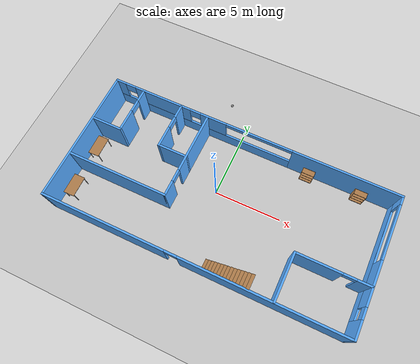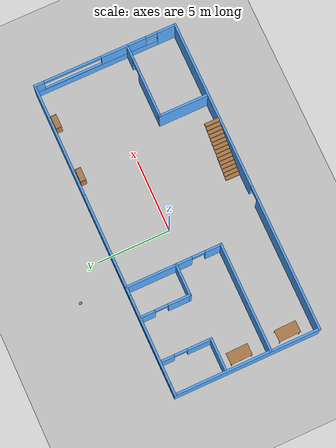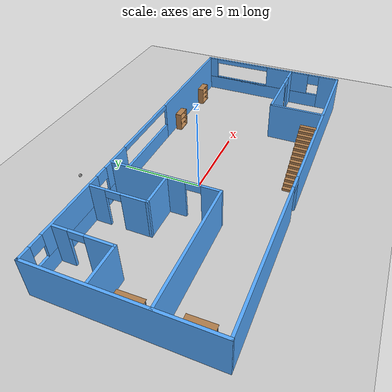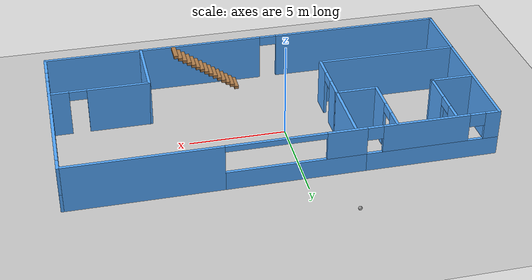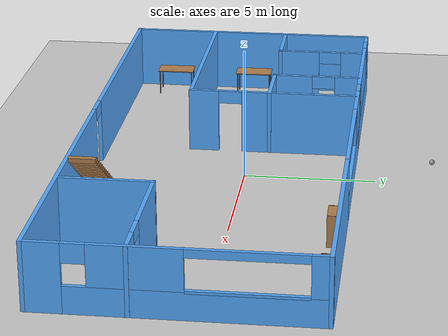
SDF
<sdf version="1.6">
 <world name="default">
  <plugin name="welcome" filename="libwelcome.so"/>
  <light name="sun" type="directional">
   <pose>0 0 10 0 -0 0</pose>
   <diffuse>0.8 0.8 0.8 1</diffuse>
   <specular>0.2 0.2 0.2 1</specular>
   <attenuation>
    <range>1000</range>
    <constant>0.9</constant>
    <linear>0.01</linear>
    <quadratic>0.001</quadratic>
   </attenuation>
   <direction>-0.5 0.1 -0.9</direction>
  </light>
  <model name="ground_plane">
   <static>1</static>
   <link name="link">
    <collision name="collision">
     <geometry><plane><normal>0 0 1</normal><size>100 100</size></plane></geometry>
     <surface><friction><ode><mu>100</mu><mu2>50</mu2></ode></friction></surface>
    </collision>
    <visual name="visual">
     <cast_shadows>0</cast_shadows>
     <geometry><plane><normal>0 0 1</normal><size>100 100</size></plane></geometry>
     <material>
      <script><uri>file://media/materials/scripts/gazebo.material</uri><name>Gazebo/Grey</name></script>
     </material>
    </visual>
   </link>
  </model>
  <gravity>0 0 -9.8</gravity>
  <magnetic_field>6e-06 2.3e-05 -4.2e-05</magnetic_field>
  <atmosphere type="adiabatic"/>
  <physics name="default_physics" default="0" type="ode">
   <max_step_size>0.001</max_step_size>
   <real_time_factor>1</real_time_factor>
   <real_time_update_rate>1000</real_time_update_rate>
  </physics>
  <scene><ambient>0.4 0.4 0.4 1</ambient><background>0.7 0.7 0.7 1</background><shadows>1</shadows></scene>
  <spherical_coordinates>
   <surface_model>EARTH_WGS84</surface_model>
   <latitude_deg>0</latitude_deg>
   <longitude_deg>0</longitude_deg>
   <elevation>0</elevation>
   <heading_deg>0</heading_deg>
  </spherical_coordinates>
  <model name="Building">
   <pose>0.929117 -0.808355 0 0 -0 0</pose>
   <link name="Stairs_0">
    <visual name="Stairs_0_Visual_0">
     <pose>0.664392 -4.38115 0.083333 0 -0 1.5708</pose>
     <geometry><box><size>1 0.233333 0.166667</size></box></geometry>
     <material>
      <script><uri>file://media/materials/scripts/gazebo.material</uri><name>Gazebo/Wood</name></script>
      <ambient>1 1 1 1</ambient>
     </material>
     <meta><layer>0</layer></meta>
    </visual>
    <collision name="Stairs_0_Collision_0">
     <geometry><box><size>1 0.233333 0.166667</size></box></geometry>
     <pose>0.664392 -4.38115 0.083333 0 -0 1.5708</pose>
    </collision>
    <visual name="Stairs_0_Visual_1">
     <pose>0.897726 -4.38115 0.25 0 -0 1.5708</pose>
     <geometry><box><size>1 0.233333 0.166667</size></box></geometry>
     <material>
      <script><uri>file://media/materials/scripts/gazebo.material</uri><name>Gazebo/Wood</name></script>
      <ambient>1 1 1 1</ambient>
     </material>
     <meta><layer>0</layer></meta>
    </visual>
    <collision name="Stairs_0_Collision_1">
     <geometry><box><size>1 0.233333 0.166667</size></box></geometry>
     <pose>0.897726 -4.38115 0.25 0 -0 1.5708</pose>
    </collision>
    <visual name="Stairs_0_Visual_2">
     <pose>1.13106 -4.38115 0.416667 0 -0 1.5708</pose>
     <geometry><box><size>1 0.233333 0.166667</size></box></geometry>
     <material>
      <script><uri>file://media/materials/scripts/gazebo.material</uri><name>Gazebo/Wood</name></script>
      <ambient>1 1 1 1</ambient>
     </material>
     <meta><layer>0</layer></meta>
    </visual>
    <collision name="Stairs_0_Collision_2">
     <geometry><box><size>1 0.233333 0.166667</size></box></geometry>
     <pose>1.13106 -4.38115 0.416667 0 -0 1.5708</pose>
    </collision>
    <visual name="Stairs_0_Visual_3">
     <pose>1.36439 -4.38115 0.583333 0 -0 1.5708</pose>
     <geometry><box><size>1 0.233333 0.166667</size></box></geometry>
     <material>
      <script><uri>file://media/materials/scripts/gazebo.material</uri><name>Gazebo/Wood</name></script>
      <ambient>1 1 1 1</ambient>
     </material>
     <meta><layer>0</layer></meta>
    </visual>
    <collision name="Stairs_0_Collision_3">
     <geometry><box><size>1 0.233333 0.166667</size></box></geometry>
     <pose>1.36439 -4.38115 0.583333 0 -0 1.5708</pose>
    </collision>
    <visual name="Stairs_0_Visual_4">
     <pose>1.59773 -4.38115 0.75 0 -0 1.5708</pose>
     <geometry><box><size>1 0.233333 0.166667</size></box></geometry>
     <material>
      <script><uri>file://media/materials/scripts/gazebo.material</uri><name>Gazebo/Wood</name></script>
      <ambient>1 1 1 1</ambient>
     </material>
     <meta><layer>0</layer></meta>
    </visual>
    <collision name="Stairs_0_Collision_4">
     <geometry><box><size>1 0.233333 0.166667</size></box></geometry>
     <pose>1.59773 -4.38115 0.75 0 -0 1.5708</pose>
    </collision>
    <visual name="Stairs_0_Visual_5">
     <pose>1.83106 -4.38115 0.916667 0 -0 1.5708</pose>
     <geometry><box><size>1 0.233333 0.166667</size></box></geometry>
     <material>
      <script><uri>file://media/materials/scripts/gazebo.material</uri><name>Gazebo/Wood</name></script>
      <ambient>1 1 1 1</ambient>
     </material>
     <meta><layer>0</layer></meta>
    </visual>
    <collision name="Stairs_0_Collision_5">
     <geometry><box><size>1 0.233333 0.166667</size></box></geometry>
     <pose>1.83106 -4.38115 0.916667 0 -0 1.5708</pose>
    </collision>
    <visual name="Stairs_0_Visual_6">
     <pose>2.06439 -4.38115 1.08333 0 -0 1.5708</pose>
     <geometry><box><size>1 0.233333 0.166667</size></box></geometry>
     <material>
      <script><uri>file://media/materials/scripts/gazebo.material</uri><name>Gazebo/Wood</name></script>
      <ambient>1 1 1 1</ambient>
     </material>
     <meta><layer>0</layer></meta>
    </visual>
    <collision name="Stairs_0_Collision_6">
     <geometry><box><size>1 0.233333 0.166667</size></box></geometry>
     <pose>2.06439 -4.38115 1.08333 0 -0 1.5708</pose>
    </collision>
    <visual name="Stairs_0_Visual_7">
     <pose>2.29773 -4.38115 1.25 0 -0 1.5708</pose>
     <geometry><box><size>1 0.233333 0.166667</size></box></geometry>
     <material>
      <script><uri>file://media/materials/scripts/gazebo.material</uri><name>Gazebo/Wood</name></script>
      <ambient>1 1 1 1</ambient>
     </material>
     <meta><layer>0</layer></meta>
    </visual>
    <collision name="Stairs_0_Collision_7">
     <geometry><box><size>1 0.233333 0.166667</size></box></geometry>
     <pose>2.29773 -4.38115 1.25 0 -0 1.5708</pose>
    </collision>
    <visual name="Stairs_0_Visual_8">
     <pose>2.53106 -4.38115 1.41667 0 -0 1.5708</pose>
     <geometry><box><size>1 0.233333 0.166667</size></box></geometry>
     <material>
      <script><uri>file://media/materials/scripts/gazebo.material</uri><name>Gazebo/Wood</name></script>
      <ambient>1 1 1 1</ambient>
     </material>
     <meta><layer>0</layer></meta>
    </visual>
    <collision name="Stairs_0_Collision_8">
     <geometry><box><size>1 0.233333 0.166667</size></box></geometry>
     <pose>2.53106 -4.38115 1.41667 0 -0 1.5708</pose>
    </collision>
    <visual name="Stairs_0_Visual_9">
     <pose>2.76439 -4.38115 1.58333 0 -0 1.5708</pose>
     <geometry><box><size>1 0.233333 0.166667</size></box></geometry>
     <material>
      <script><uri>file://media/materials/scripts/gazebo.material</uri><name>Gazebo/Wood</name></script>
      <ambient>1 1 1 1</ambient>
     </material>
     <meta><layer>0</layer></meta>
    </visual>
    <collision name="Stairs_0_Collision_9">
     <geometry><box><size>1 0.233333 0.166667</size></box></geometry>
     <pose>2.76439 -4.38115 1.58333 0 -0 1.5708</pose>
    </collision>
    <visual name="Stairs_0_Visual_10">
     <pose>2.99773 -4.38115 1.75 0 -0 1.5708</pose>
     <geometry><box><size>1 0.233333 0.166667</size></box></geometry>
     <material>
      <script><uri>file://media/materials/scripts/gazebo.material</uri><name>Gazebo/Wood</name></script>
      <ambient>1 1 1 1</ambient>
     </material>
     <meta><layer>0</layer></meta>
    </visual>
    <collision name="Stairs_0_Collision_10">
     <geometry><box><size>1 0.233333 0.166667</size></box></geometry>
     <pose>2.99773 -4.38115 1.75 0 -0 1.5708</pose>
    </collision>
    <visual name="Stairs_0_Visual_11">
     <pose>3.23106 -4.38115 1.91667 0 -0 1.5708</pose>
     <geometry><box><size>1 0.233333 0.166667</size></box></geometry>
     <material>
      <script><uri>file://media/materials/scripts/gazebo.material</uri><name>Gazebo/Wood</name></script>
      <ambient>1 1 1 1</ambient>
     </material>
     <meta><layer>0</layer></meta>
    </visual>
    <collision name="Stairs_0_Collision_11">
     <geometry><box><size>1 0.233333 0.166667</size></box></geometry>
     <pose>3.23106 -4.38115 1.91667 0 -0 1.5708</pose>
    </collision>
    <visual name="Stairs_0_Visual_12">
     <pose>3.46439 -4.38115 2.08333 0 -0 1.5708</pose>
     <geometry><box><size>1 0.233333 0.166667</size></box></geometry>
     <material>
      <script><uri>file://media/materials/scripts/gazebo.material</uri><name>Gazebo/Wood</name></script>
      <ambient>1 1 1 1</ambient>
     </material>
     <meta><layer>0</layer></meta>
    </visual>
    <collision name="Stairs_0_Collision_12">
     <geometry><box><size>1 0.233333 0.166667</size></box></geometry>
     <pose>3.46439 -4.38115 2.08333 0 -0 1.5708</pose>
    </collision>
    <visual name="Stairs_0_Visual_13">
     <pose>3.69773 -4.38115 2.25 0 -0 1.5708</pose>
     <geometry><box><size>1 0.233333 0.166667</size></box></geometry>
     <material>
      <script><uri>file://media/materials/scripts/gazebo.material</uri><name>Gazebo/Wood</name></script>
      <ambient>1 1 1 1</ambient>
     </material>
     <meta><layer>0</layer></meta>
    </visual>
    <collision name="Stairs_0_Collision_13">
     <geometry><box><size>1 0.233333 0.166667</size></box></geometry>
     <pose>3.69773 -4.38115 2.25 0 -0 1.5708</pose>
    </collision>
    <visual name="Stairs_0_Visual_14">
     <pose>3.93106 -4.38115 2.41667 0 -0 1.5708</pose>
     <geometry><box><size>1 0.233333 0.166667</size></box></geometry>
     <material>
      <script><uri>file://media/materials/scripts/gazebo.material</uri><name>Gazebo/Wood</name></script>
      <ambient>1 1 1 1</ambient>
     </material>
     <meta><layer>0</layer></meta>
    </visual>
    <collision name="Stairs_0_Collision_14">
     <geometry><box><size>1 0.233333 0.166667</size></box></geometry>
     <pose>3.93106 -4.38115 2.41667 0 -0 1.5708</pose>
    </collision>
   </link>
   <link name="Wall_10">
    <pose>-3.45255 1.62717 0 0 -0 1.5708</pose>
    <visual name="Wall_10_Visual_0">
     <pose>-2.71124 0 1.25 0 -0 0</pose>
     <geometry><box><size>1.17752 0.15 2.5</size></box></geometry>
     <material>
      <script><uri>file://media/materials/scripts/gazebo.material</uri><name>Gazebo/Grey</name></script>
      <ambient>0.333333 0.666667 1 1</ambient>
     </material>
     <meta><layer>0</layer></meta>
    </visual>
    <collision name="Wall_10_Collision_0">
     <geometry><box><size>1.17752 0.15 2.5</size></box></geometry>
     <pose>-2.71124 0 1.25 0 -0 0</pose>
    </collision>
    <visual name="Wall_10_Visual_1">
     <pose>1.03876 0 1.25 0 -0 0</pose>
     <geometry><box><size>4.52248 0.15 2.5</size></box></geometry>
     <material>
      <script><uri>file://media/materials/scripts/gazebo.material</uri><name>Gazebo/Grey</name></script>
      <ambient>0.333333 0.666667 1 1</ambient>
     </material>
     <meta><layer>0</layer></meta>
    </visual>
    <collision name="Wall_10_Collision_1">
     <geometry><box><size>4.52248 0.15 2.5</size></box></geometry>
     <pose>1.03876 0 1.25 0 -0 0</pose>
    </collision>
    <visual name="Wall_10_Visual_2">
     <pose>-1.67248 0 2.25 0 -0 0</pose>
     <geometry><box><size>0.9 0.15 0.5</size></box></geometry>
     <material>
      <script><uri>file://media/materials/scripts/gazebo.material</uri><name>Gazebo/Grey</name></script>
      <ambient>0.333333 0.666667 1 1</ambient>
     </material>
     <meta><layer>0</layer></meta>
    </visual>
    <collision name="Wall_10_Collision_2">
     <geometry><box><size>0.9 0.15 0.5</size></box></geometry>
     <pose>-1.67248 0 2.25 0 -0 0</pose>
    </collision>
   </link>
   <link name="Wall_12">
    <pose>-8.58176 3.12092 0 0 0 -1.5708</pose>
    <visual name="Wall_12_Visual_0">
     <pose>-1.2991 0 1.25 0 -0 0</pose>
     <geometry><box><size>0.90181 0.15 2.5</size></box></geometry>
     <material>
      <script><uri>file://media/materials/scripts/gazebo.material</uri><name>Gazebo/Grey</name></script>
      <ambient>0.333333 0.666667 1 1</ambient>
     </material>
     <meta><layer>0</layer></meta>
    </visual>
    <collision name="Wall_12_Collision_0">
     <geometry><box><size>0.90181 0.15 2.5</size></box></geometry>
     <pose>-1.2991 0 1.25 0 -0 0</pose>
    </collision>
    <visual name="Wall_12_Visual_1">
     <pose>0.900905 0 1.25 0 -0 0</pose>
     <geometry><box><size>1.69819 0.15 2.5</size></box></geometry>
     <material>
      <script><uri>file://media/materials/scripts/gazebo.material</uri><name>Gazebo/Grey</name></script>
      <ambient>0.333333 0.666667 1 1</ambient>
     </material>
     <meta><layer>0</layer></meta>
    </visual>
    <collision name="Wall_12_Collision_1">
     <geometry><box><size>1.69819 0.15 2.5</size></box></geometry>
     <pose>0.900905 0 1.25 0 -0 0</pose>
    </collision>
    <visual name="Wall_12_Visual_2">
     <pose>-0.39819 0 2.25 0 -0 0</pose>
     <geometry><box><size>0.9 0.15 0.5</size></box></geometry>
     <material>
      <script><uri>file://media/materials/scripts/gazebo.material</uri><name>Gazebo/Grey</name></script>
      <ambient>0.333333 0.666667 1 1</ambient>
     </material>
     <meta><layer>0</layer></meta>
    </visual>
    <collision name="Wall_12_Collision_2">
     <geometry><box><size>0.9 0.15 0.5</size></box></geometry>
     <pose>-0.39819 0 2.25 0 -0 0</pose>
    </collision>
   </link>
   <link name="Wall_13">
    <collision name="Wall_13_Collision">
     <geometry><box><size>2.25 0.15 2.5</size></box></geometry>
     <pose>0 0 1.25 0 -0 0</pose>
    </collision>
    <visual name="Wall_13_Visual">
     <pose>0 0 1.25 0 -0 0</pose>
     <geometry><box><size>2.25 0.15 2.5</size></box></geometry>
     <material>
      <script><uri>file://media/materials/scripts/gazebo.material</uri><name>Gazebo/Grey</name></script>
      <ambient>0.333333 0.666667 1 1</ambient>
     </material>
     <meta><layer>0</layer></meta>
    </visual>
    <pose>-9.63176 1.44592 0 0 -0 3.14159</pose>
   </link>
   <link name="Wall_19">
    <collision name="Wall_19_Collision">
     <geometry><box><size>2.25 0.15 2.5</size></box></geometry>
     <pose>0 0 1.25 0 -0 0</pose>
    </collision>
    <visual name="Wall_19_Visual">
     <pose>0 0 1.25 0 -0 0</pose>
     <geometry><box><size>2.25 0.15 2.5</size></box></geometry>
     <material>
      <script><uri>file://media/materials/scripts/gazebo.material</uri><name>Gazebo/Grey</name></script>
      <ambient>0.333333 0.666667 1 1</ambient>
     </material>
     <meta><layer>0</layer></meta>
    </visual>
    <pose>-4.49792 1.4975 0 0 -0 3.14159</pose>
   </link>
   <link name="Wall_2">
    <collision name="Wall_2_Collision">
     <geometry><box><size>10 0.15 2.5</size></box></geometry>
     <pose>0 0 1.25 0 -0 0</pose>
    </collision>
    <visual name="Wall_2_Visual">
     <pose>0 0 1.25 0 -0 0</pose>
     <geometry><box><size>10 0.15 2.5</size></box></geometry>
     <material>
      <script><uri>file://media/materials/scripts/gazebo.material</uri><name>Gazebo/Grey</name></script>
      <ambient>0.333333 0.666667 1 1</ambient>
     </material>
     <meta><layer>0</layer></meta>
    </visual>
    <pose>-10.8026 0 0 0 0 -1.5708</pose>
   </link>
   <link name="Wall_20">
    <pose>-5.54792 3.1725 0 0 -0 1.5708</pose>
    <visual name="Wall_20_Visual_0">
     <pose>-0.953293 0 1.25 0 -0 0</pose>
     <geometry><box><size>1.59342 0.15 2.5</size></box></geometry>
     <material>
      <script><uri>file://media/materials/scripts/gazebo.material</uri><name>Gazebo/Grey</name></script>
      <ambient>0.333333 0.666667 1 1</ambient>
     </material>
     <meta><layer>0</layer></meta>
    </visual>
    <collision name="Wall_20_Collision_0">
     <geometry><box><size>1.59342 0.15 2.5</size></box></geometry>
     <pose>-0.953293 0 1.25 0 -0 0</pose>
    </collision>
    <visual name="Wall_20_Visual_1">
     <pose>1.24671 0 1.25 0 -0 0</pose>
     <geometry><box><size>1.00659 0.15 2.5</size></box></geometry>
     <material>
      <script><uri>file://media/materials/scripts/gazebo.material</uri><name>Gazebo/Grey</name></script>
      <ambient>0.333333 0.666667 1 1</ambient>
     </material>
     <meta><layer>0</layer></meta>
    </visual>
    <collision name="Wall_20_Collision_1">
     <geometry><box><size>1.00659 0.15 2.5</size></box></geometry>
     <pose>1.24671 0 1.25 0 -0 0</pose>
    </collision>
    <visual name="Wall_20_Visual_2">
     <pose>0.293415 0 2.25 0 -0 0</pose>
     <geometry><box><size>0.9 0.15 0.5</size></box></geometry>
     <material>
      <script><uri>file://media/materials/scripts/gazebo.material</uri><name>Gazebo/Grey</name></script>
      <ambient>0.333333 0.666667 1 1</ambient>
     </material>
     <meta><layer>0</layer></meta>
    </visual>
    <collision name="Wall_20_Collision_2">
     <geometry><box><size>0.9 0.15 0.5</size></box></geometry>
     <pose>0.293415 0 2.25 0 -0 0</pose>
    </collision>
   </link>
   <link name="Wall_27">
    <collision name="Wall_27_Collision">
     <geometry><box><size>3.5 0.15 2.5</size></box></geometry>
     <pose>0 0 1.25 0 -0 0</pose>
    </collision>
    <visual name="Wall_27_Visual">
     <pose>0 0 1.25 0 -0 0</pose>
     <geometry><box><size>3.5 0.15 2.5</size></box></geometry>
     <material>
      <script><uri>file://media/materials/scripts/gazebo.material</uri><name>Gazebo/Grey</name></script>
      <ambient>0.333333 0.666667 1 1</ambient>
     </material>
     <meta><layer>0</layer></meta>
    </visual>
    <pose>5.70255 -3.21155 0 0 -0 1.5708</pose>
   </link>
   <link name="Wall_28">
    <pose>8.25255 -1.53655 0 0 -0 0</pose>
    <visual name="Wall_28_Visual_0">
     <pose>-0.990387 0 1.25 0 -0 0</pose>
     <geometry><box><size>3.26923 0.15 2.5</size></box></geometry>
     <material>
      <script><uri>file://media/materials/scripts/gazebo.material</uri><name>Gazebo/Grey</name></script>
      <ambient>0.333333 0.666667 1 1</ambient>
     </material>
     <meta><layer>0</layer></meta>
    </visual>
    <collision name="Wall_28_Collision_0">
     <geometry><box><size>3.26923 0.15 2.5</size></box></geometry>
     <pose>-0.990387 0 1.25 0 -0 0</pose>
    </collision>
    <visual name="Wall_28_Visual_1">
     <pose>2.08461 0 1.25 0 -0 0</pose>
     <geometry><box><size>1.08077 0.15 2.5</size></box></geometry>
     <material>
      <script><uri>file://media/materials/scripts/gazebo.material</uri><name>Gazebo/Grey</name></script>
      <ambient>0.333333 0.666667 1 1</ambient>
     </material>
     <meta><layer>0</layer></meta>
    </visual>
    <collision name="Wall_28_Collision_1">
     <geometry><box><size>1.08077 0.15 2.5</size></box></geometry>
     <pose>2.08461 0 1.25 0 -0 0</pose>
    </collision>
    <visual name="Wall_28_Visual_2">
     <pose>1.09423 0 2.25 0 -0 0</pose>
     <geometry><box><size>0.9 0.15 0.5</size></box></geometry>
     <material>
      <script><uri>file://media/materials/scripts/gazebo.material</uri><name>Gazebo/Grey</name></script>
      <ambient>0.333333 0.666667 1 1</ambient>
     </material>
     <meta><layer>0</layer></meta>
    </visual>
    <collision name="Wall_28_Collision_2">
     <geometry><box><size>0.9 0.15 0.5</size></box></geometry>
     <pose>1.09423 0 2.25 0 -0 0</pose>
    </collision>
   </link>
   <link name="Wall_3">
    <pose>-0.00255 -4.925 0 0 -0 0</pose>
    <visual name="Wall_3_Visual_0">
     <pose>-6.32118 0 1.25 0 -0 0</pose>
     <geometry><box><size>9.10765 0.15 2.5</size></box></geometry>
     <material>
      <script><uri>file://media/materials/scripts/gazebo.material</uri><name>Gazebo/Grey</name></script>
      <ambient>0.333333 0.666667 1 1</ambient>
     </material>
     <meta><layer>0</layer></meta>
    </visual>
    <collision name="Wall_3_Collision_0">
     <geometry><box><size>9.10765 0.15 2.5</size></box></geometry>
     <pose>-6.32118 0 1.25 0 -0 0</pose>
    </collision>
    <visual name="Wall_3_Visual_1">
     <pose>5.00382 0 1.25 0 -0 0</pose>
     <geometry><box><size>11.7424 0.15 2.5</size></box></geometry>
     <material>
      <script><uri>file://media/materials/scripts/gazebo.material</uri><name>Gazebo/Grey</name></script>
      <ambient>0.333333 0.666667 1 1</ambient>
     </material>
     <meta><layer>0</layer></meta>
    </visual>
    <collision name="Wall_3_Collision_1">
     <geometry><box><size>11.7424 0.15 2.5</size></box></geometry>
     <pose>5.00382 0 1.25 0 -0 0</pose>
    </collision>
    <visual name="Wall_3_Visual_2">
     <pose>-1.31735 0 2.25 0 -0 0</pose>
     <geometry><box><size>0.9 0.15 0.5</size></box></geometry>
     <material>
      <script><uri>file://media/materials/scripts/gazebo.material</uri><name>Gazebo/Grey</name></script>
      <ambient>0.333333 0.666667 1 1</ambient>
     </material>
     <meta><layer>0</layer></meta>
    </visual>
    <collision name="Wall_3_Collision_2">
     <geometry><box><size>0.9 0.15 0.5</size></box></geometry>
     <pose>-1.31735 0 2.25 0 -0 0</pose>
    </collision>
   </link>
   <link name="Wall_4">
    <pose>10.7974 0 0 0 -0 1.5708</pose>
    <visual name="Wall_4_Visual_0">
     <pose>-4.31867 0 1.25 0 -0 0</pose>
     <geometry><box><size>1.36266 0.15 2.5</size></box></geometry>
     <material>
      <script><uri>file://media/materials/scripts/gazebo.material</uri><name>Gazebo/Grey</name></script>
      <ambient>0.333333 0.666667 1 1</ambient>
     </material>
     <meta><layer>0</layer></meta>
    </visual>
    <collision name="Wall_4_Collision_0">
     <geometry><box><size>1.36266 0.15 2.5</size></box></geometry>
     <pose>-4.31867 0 1.25 0 -0 0</pose>
    </collision>
    <visual name="Wall_4_Visual_1">
     <pose>0.68133 0 0.5 0 -0 0</pose>
     <geometry><box><size>8.63734 0.15 1</size></box></geometry>
     <material>
      <script><uri>file://media/materials/scripts/gazebo.material</uri><name>Gazebo/Grey</name></script>
      <ambient>0.333333 0.666667 1 1</ambient>
     </material>
     <meta><layer>0</layer></meta>
    </visual>
    <collision name="Wall_4_Collision_1">
     <geometry><box><size>8.63734 0.15 1</size></box></geometry>
     <pose>0.68133 0 0.5 0 -0 0</pose>
    </collision>
    <visual name="Wall_4_Visual_2">
     <pose>-1.27092 0 1.75 0 -0 0</pose>
     <geometry><box><size>3.13284 0.15 1.5</size></box></geometry>
     <material>
      <script><uri>file://media/materials/scripts/gazebo.material</uri><name>Gazebo/Grey</name></script>
      <ambient>0.333333 0.666667 1 1</ambient>
     </material>
     <meta><layer>0</layer></meta>
    </visual>
    <collision name="Wall_4_Collision_2">
     <geometry><box><size>3.13284 0.15 1.5</size></box></geometry>
     <pose>-1.27092 0 1.75 0 -0 0</pose>
    </collision>
    <visual name="Wall_4_Visual_3">
     <pose>4.64775 0 1.75 0 -0 0</pose>
     <geometry><box><size>0.704498 0.15 1.5</size></box></geometry>
     <material>
      <script><uri>file://media/materials/scripts/gazebo.material</uri><name>Gazebo/Grey</name></script>
      <ambient>0.333333 0.666667 1 1</ambient>
     </material>
     <meta><layer>0</layer></meta>
    </visual>
    <collision name="Wall_4_Collision_3">
     <geometry><box><size>0.704498 0.15 1.5</size></box></geometry>
     <pose>4.64775 0 1.75 0 -0 0</pose>
    </collision>
    <visual name="Wall_4_Visual_4">
     <pose>2.2955 0 1 0 -0 0</pose>
     <geometry><box><size>4 0.15 0.1</size></box></geometry>
     <material>
      <script><uri>file://media/materials/scripts/gazebo.material</uri><name>Gazebo/Grey</name></script>
      <ambient>0.333333 0.666667 1 1</ambient>
     </material>
     <meta><layer>0</layer></meta>
    </visual>
    <collision name="Wall_4_Collision_4">
     <geometry><box><size>4 0.15 0.1</size></box></geometry>
     <pose>2.2955 0 1 0 -0 0</pose>
    </collision>
    <visual name="Wall_4_Visual_5">
     <pose>-3.23734 0 2.15 0 -0 0</pose>
     <geometry><box><size>0.8 0.15 0.7</size></box></geometry>
     <material>
      <script><uri>file://media/materials/scripts/gazebo.material</uri><name>Gazebo/Grey</name></script>
      <ambient>0.333333 0.666667 1 1</ambient>
     </material>
     <meta><layer>0</layer></meta>
    </visual>
    <collision name="Wall_4_Collision_5">
     <geometry><box><size>0.8 0.15 0.7</size></box></geometry>
     <pose>-3.23734 0 2.15 0 -0 0</pose>
    </collision>
    <visual name="Wall_4_Visual_6">
     <pose>2.2955 0 2.35 0 -0 0</pose>
     <geometry><box><size>4 0.15 0.3</size></box></geometry>
     <material>
      <script><uri>file://media/materials/scripts/gazebo.material</uri><name>Gazebo/Grey</name></script>
      <ambient>0.333333 0.666667 1 1</ambient>
     </material>
     <meta><layer>0</layer></meta>
    </visual>
    <collision name="Wall_4_Collision_6">
     <geometry><box><size>4 0.15 0.3</size></box></geometry>
     <pose>2.2955 0 2.35 0 -0 0</pose>
    </collision>
   </link>
   <link name="Wall_5">
    <pose>-0.00255 4.925 0 0 -0 3.14159</pose>
    <visual name="Wall_5_Visual_0">
     <pose>-6.93323 0 1.25 0 -0 0</pose>
     <geometry><box><size>7.88354 0.15 2.5</size></box></geometry>
     <material>
      <script><uri>file://media/materials/scripts/gazebo.material</uri><name>Gazebo/Grey</name></script>
      <ambient>0.333333 0.666667 1 1</ambient>
     </material>
     <meta><layer>0</layer></meta>
    </visual>
    <collision name="Wall_5_Collision_0">
     <geometry><box><size>7.88354 0.15 2.5</size></box></geometry>
     <pose>-6.93323 0 1.25 0 -0 0</pose>
    </collision>
    <visual name="Wall_5_Visual_1">
     <pose>0.519056 0 0.5 0 -0 0</pose>
     <geometry><box><size>7.02104 0.15 1</size></box></geometry>
     <material>
      <script><uri>file://media/materials/scripts/gazebo.material</uri><name>Gazebo/Grey</name></script>
      <ambient>0.333333 0.666667 1 1</ambient>
     </material>
     <meta><layer>0</layer></meta>
    </visual>
    <collision name="Wall_5_Collision_1">
     <geometry><box><size>7.02104 0.15 1</size></box></geometry>
     <pose>0.519056 0 0.5 0 -0 0</pose>
    </collision>
    <visual name="Wall_5_Visual_2">
     <pose>7.45229 0 0.5 0 -0 0</pose>
     <geometry><box><size>6.84543 0.15 1</size></box></geometry>
     <material>
      <script><uri>file://media/materials/scripts/gazebo.material</uri><name>Gazebo/Grey</name></script>
      <ambient>0.333333 0.666667 1 1</ambient>
     </material>
     <meta><layer>0</layer></meta>
    </visual>
    <collision name="Wall_5_Collision_2">
     <geometry><box><size>6.84543 0.15 1</size></box></geometry>
     <pose>7.45229 0 0.5 0 -0 0</pose>
    </collision>
    <visual name="Wall_5_Visual_3">
     <pose>7.04969 0 1.75 0 -0 0</pose>
     <geometry><box><size>4.44024 0.15 1.5</size></box></geometry>
     <material>
      <script><uri>file://media/materials/scripts/gazebo.material</uri><name>Gazebo/Grey</name></script>
      <ambient>0.333333 0.666667 1 1</ambient>
     </material>
     <meta><layer>0</layer></meta>
    </visual>
    <collision name="Wall_5_Collision_3">
     <geometry><box><size>4.44024 0.15 1.5</size></box></geometry>
     <pose>7.04969 0 1.75 0 -0 0</pose>
    </collision>
    <visual name="Wall_5_Visual_4">
     <pose>10.4724 0 1.75 0 -0 0</pose>
     <geometry><box><size>0.805186 0.15 1.5</size></box></geometry>
     <material>
      <script><uri>file://media/materials/scripts/gazebo.material</uri><name>Gazebo/Grey</name></script>
      <ambient>0.333333 0.666667 1 1</ambient>
     </material>
     <meta><layer>0</layer></meta>
    </visual>
    <collision name="Wall_5_Collision_4">
     <geometry><box><size>0.805186 0.15 1.5</size></box></geometry>
     <pose>10.4724 0 1.75 0 -0 0</pose>
    </collision>
    <visual name="Wall_5_Visual_5">
     <pose>3.01906 0 1.75 0 -0 0</pose>
     <geometry><box><size>2.02104 0.15 1.5</size></box></geometry>
     <material>
      <script><uri>file://media/materials/scripts/gazebo.material</uri><name>Gazebo/Grey</name></script>
      <ambient>0.333333 0.666667 1 1</ambient>
     </material>
     <meta><layer>0</layer></meta>
    </visual>
    <collision name="Wall_5_Collision_5">
     <geometry><box><size>2.02104 0.15 1.5</size></box></geometry>
     <pose>3.01906 0 1.75 0 -0 0</pose>
    </collision>
    <visual name="Wall_5_Visual_6">
     <pose>3.01906 0 1.75 0 -0 0</pose>
     <geometry><box><size>2.02104 0.15 1.5</size></box></geometry>
     <material>
      <script><uri>file://media/materials/scripts/gazebo.material</uri><name>Gazebo/Grey</name></script>
      <ambient>0.333333 0.666667 1 1</ambient>
     </material>
     <meta><layer>0</layer></meta>
    </visual>
    <collision name="Wall_5_Collision_6">
     <geometry><box><size>2.02104 0.15 1.5</size></box></geometry>
     <pose>3.01906 0 1.75 0 -0 0</pose>
    </collision>
    <visual name="Wall_5_Visual_7">
     <pose>9.66981 0 2.15 0 -0 0</pose>
     <geometry><box><size>0.8 0.15 0.7</size></box></geometry>
     <material>
      <script><uri>file://media/materials/scripts/gazebo.material</uri><name>Gazebo/Grey</name></script>
      <ambient>0.333333 0.666667 1 1</ambient>
     </material>
     <meta><layer>0</layer></meta>
    </visual>
    <collision name="Wall_5_Collision_7">
     <geometry><box><size>0.8 0.15 0.7</size></box></geometry>
     <pose>9.66981 0 2.15 0 -0 0</pose>
    </collision>
    <visual name="Wall_5_Visual_8">
     <pose>4.42957 0 2.15 0 -0 0</pose>
     <geometry><box><size>0.8 0.15 0.7</size></box></geometry>
     <material>
      <script><uri>file://media/materials/scripts/gazebo.material</uri><name>Gazebo/Grey</name></script>
      <ambient>0.333333 0.666667 1 1</ambient>
     </material>
     <meta><layer>0</layer></meta>
    </visual>
    <collision name="Wall_5_Collision_8">
     <geometry><box><size>0.8 0.15 0.7</size></box></geometry>
     <pose>4.42957 0 2.15 0 -0 0</pose>
    </collision>
    <visual name="Wall_5_Visual_9">
     <pose>4.42957 0 2.15 0 -0 0</pose>
     <geometry><box><size>0.8 0.15 0.7</size></box></geometry>
     <material>
      <script><uri>file://media/materials/scripts/gazebo.material</uri><name>Gazebo/Grey</name></script>
      <ambient>0.333333 0.666667 1 1</ambient>
     </material>
     <meta><layer>0</layer></meta>
    </visual>
    <collision name="Wall_5_Collision_9">
     <geometry><box><size>0.8 0.15 0.7</size></box></geometry>
     <pose>4.42957 0 2.15 0 -0 0</pose>
    </collision>
    <visual name="Wall_5_Visual_10">
     <pose>-0.491462 0 2.35 0 -0 0</pose>
     <geometry><box><size>5 0.15 0.3</size></box></geometry>
     <material>
      <script><uri>file://media/materials/scripts/gazebo.material</uri><name>Gazebo/Grey</name></script>
      <ambient>0.333333 0.666667 1 1</ambient>
     </material>
     <meta><layer>0</layer></meta>
    </visual>
    <collision name="Wall_5_Collision_10">
     <geometry><box><size>5 0.15 0.3</size></box></geometry>
     <pose>-0.491462 0 2.35 0 -0 0</pose>
    </collision>
   </link>
   <link name="Wall_8">
    <collision name="Wall_8_Collision">
     <geometry><box><size>7.5 0.15 2.5</size></box></geometry>
     <pose>0 0 1.25 0 -0 0</pose>
    </collision>
    <visual name="Wall_8_Visual">
     <pose>0 0 1.25 0 -0 0</pose>
     <geometry><box><size>7.5 0.15 2.5</size></box></geometry>
     <material>
      <script><uri>file://media/materials/scripts/gazebo.material</uri><name>Gazebo/Grey</name></script>
      <ambient>0.333333 0.666667 1 1</ambient>
     </material>
     <meta><layer>0</layer></meta>
    </visual>
    <pose>-7.12755 -1.59783 0 0 -0 0</pose>
   </link>
   <static>1</static>
  </model>
  <model name="table">
   <static>1</static>
   <link name="link">
    <collision name="surface">
     <pose>0 0 1 0 -0 0</pose>
     <geometry><box><size>1.5 0.8 0.03</size></box></geometry>
     <surface><friction><ode><mu>0.6</mu><mu2>0.6</mu2></ode></friction></surface>
    </collision>
    <visual name="visual1">
     <pose>0 0 1 0 -0 0</pose>
     <geometry><box><size>1.5 0.8 0.03</size></box></geometry>
     <material>
      <script><uri>file://media/materials/scripts/gazebo.material</uri><name>Gazebo/Wood</name></script>
     </material>
    </visual>
    <collision name="front_left_leg">
     <pose>0.68 0.38 0.5 0 -0 0</pose>
     <geometry><cylinder><radius>0.02</radius><length>1</length></cylinder></geometry>
    </collision>
    <visual name="front_left_leg">
     <pose>0.68 0.38 0.5 0 -0 0</pose>
     <geometry><cylinder><radius>0.02</radius><length>1</length></cylinder></geometry>
     <material>
      <script><uri>file://media/materials/scripts/gazebo.material</uri><name>Gazebo/Grey</name></script>
     </material>
    </visual>
    <collision name="front_right_leg">
     <pose>0.68 -0.38 0.5 0 -0 0</pose>
     <geometry><cylinder><radius>0.02</radius><length>1</length></cylinder></geometry>
    </collision>
    <visual name="front_right_leg">
     <pose>0.68 -0.38 0.5 0 -0 0</pose>
     <geometry><cylinder><radius>0.02</radius><length>1</length></cylinder></geometry>
     <material>
      <script><uri>file://media/materials/scripts/gazebo.material</uri><name>Gazebo/Grey</name></script>
     </material>
    </visual>
    <collision name="back_right_leg">
     <pose>-0.68 -0.38 0.5 0 -0 0</pose>
     <geometry><cylinder><radius>0.02</radius><length>1</length></cylinder></geometry>
    </collision>
    <visual name="back_right_leg">
     <pose>-0.68 -0.38 0.5 0 -0 0</pose>
     <geometry><cylinder><radius>0.02</radius><length>1</length></cylinder></geometry>
     <material>
      <script><uri>file://media/materials/scripts/gazebo.material</uri><name>Gazebo/Grey</name></script>
     </material>
    </visual>
    <collision name="back_left_leg">
     <pose>-0.68 0.38 0.5 0 -0 0</pose>
     <geometry><cylinder><radius>0.02</radius><length>1</length></cylinder></geometry>
    </collision>
    <visual name="back_left_leg">
     <pose>-0.68 0.38 0.5 0 -0 0</pose>
     <geometry><cylinder><radius>0.02</radius><length>1</length></cylinder></geometry>
     <material>
      <script><uri>file://media/materials/scripts/gazebo.material</uri><name>Gazebo/Grey</name></script>
     </material>
    </visual>
   </link>
   <pose>-9.07822 -4.01899 0 0 -0 1.58688</pose>
  </model>
  <model name="table_clone">
   <static>1</static>
   <link name="link">
    <collision name="surface">
     <pose>0 0 1 0 -0 0</pose>
     <geometry><box><size>1.5 0.8 0.03</size></box></geometry>
     <surface><friction><ode><mu>0.6</mu><mu2>0.6</mu2></ode></friction></surface>
    </collision>
    <visual name="visual1">
     <pose>0 0 1 0 -0 0</pose>
     <geometry><box><size>1.5 0.8 0.03</size></box></geometry>
     <material>
      <script><uri>file://media/materials/scripts/gazebo.material</uri><name>Gazebo/Wood</name></script>
     </material>
    </visual>
    <collision name="front_left_leg">
     <pose>0.68 0.38 0.5 0 -0 0</pose>
     <geometry><cylinder><radius>0.02</radius><length>1</length></cylinder></geometry>
    </collision>
    <visual name="front_left_leg">
     <pose>0.68 0.38 0.5 0 -0 0</pose>
     <geometry><cylinder><radius>0.02</radius><length>1</length></cylinder></geometry>
     <material>
      <script><uri>file://media/materials/scripts/gazebo.material</uri><name>Gazebo/Grey</name></script>
     </material>
    </visual>
    <collision name="front_right_leg">
     <pose>0.68 -0.38 0.5 0 -0 0</pose>
     <geometry><cylinder><radius>0.02</radius><length>1</length></cylinder></geometry>
    </collision>
    <visual name="front_right_leg">
     <pose>0.68 -0.38 0.5 0 -0 0</pose>
     <geometry><cylinder><radius>0.02</radius><length>1</length></cylinder></geometry>
     <material>
      <script><uri>file://media/materials/scripts/gazebo.material</uri><name>Gazebo/Grey</name></script>
     </material>
    </visual>
    <collision name="back_right_leg">
     <pose>-0.68 -0.38 0.5 0 -0 0</pose>
     <geometry><cylinder><radius>0.02</radius><length>1</length></cylinder></geometry>
    </collision>
    <visual name="back_right_leg">
     <pose>-0.68 -0.38 0.5 0 -0 0</pose>
     <geometry><cylinder><radius>0.02</radius><length>1</length></cylinder></geometry>
     <material>
      <script><uri>file://media/materials/scripts/gazebo.material</uri><name>Gazebo/Grey</name></script>
     </material>
    </visual>
    <collision name="back_left_leg">
     <pose>-0.68 0.38 0.5 0 -0 0</pose>
     <geometry><cylinder><radius>0.02</radius><length>1</length></cylinder></geometry>
    </collision>
    <visual name="back_left_leg">
     <pose>-0.68 0.38 0.5 0 -0 0</pose>
     <geometry><cylinder><radius>0.02</radius><length>1</length></cylinder></geometry>
     <material>
      <script><uri>file://media/materials/scripts/gazebo.material</uri><name>Gazebo/Grey</name></script>
     </material>
    </visual>
   </link>
   <pose>-9.12537 -0.647731 0 0 -0 1.58687</pose>
  </model>
  <model name="bookshelf">
   <static>1</static>
   <link name="link">
    <inertial><mass>1</mass></inertial>
    <collision name="back">
     <pose>0 0.005 0.6 0 -0 0</pose>
     <geometry><box><size>0.9 0.01 1.2</size></box></geometry>
    </collision>
    <visual name="visual1">
     <pose>0 0.005 0.6 0 -0 0</pose>
     <geometry><box><size>0.9 0.01 1.2</size></box></geometry>
     <material>
      <script><uri>file://media/materials/scripts/gazebo.material</uri><name>Gazebo/Wood</name></script>
     </material>
    </visual>
    <collision name="left_side">
     <pose>0.45 -0.195 0.6 0 -0 0</pose>
     <geometry><box><size>0.02 0.4 1.2</size></box></geometry>
    </collision>
    <visual name="visual2">
     <pose>0.45 -0.195 0.6 0 -0 0</pose>
     <geometry><box><size>0.02 0.4 1.2</size></box></geometry>
     <material>
      <script><uri>file://media/materials/scripts/gazebo.material</uri><name>Gazebo/Wood</name></script>
     </material>
    </visual>
    <collision name="right_side">
     <pose>-0.45 -0.195 0.6 0 -0 0</pose>
     <geometry><box><size>0.02 0.4 1.2</size></box></geometry>
    </collision>
    <visual name="visual3">
     <pose>-0.45 -0.195 0.6 0 -0 0</pose>
     <geometry><box><size>0.02 0.4 1.2</size></box></geometry>
     <material>
      <script><uri>file://media/materials/scripts/gazebo.material</uri><name>Gazebo/Wood</name></script>
     </material>
    </visual>
    <collision name="bottom">
     <pose>0 -0.195 0.03 0 -0 0</pose>
     <geometry><box><size>0.88 0.4 0.06</size></box></geometry>
    </collision>
    <visual name="visual4">
     <pose>0 -0.195 0.03 0 -0 0</pose>
     <geometry><box><size>0.88 0.4 0.06</size></box></geometry>
     <material>
      <script><uri>file://media/materials/scripts/gazebo.material</uri><name>Gazebo/Wood</name></script>
     </material>
    </visual>
    <collision name="top">
     <pose>0 -0.195 1.19 0 -0 0</pose>
     <geometry><box><size>0.88 0.4 0.02</size></box></geometry>
    </collision>
    <visual name="visual5">
     <pose>0 -0.195 1.19 0 -0 0</pose>
     <geometry><box><size>0.88 0.4 0.02</size></box></geometry>
     <material>
      <script><uri>file://media/materials/scripts/gazebo.material</uri><name>Gazebo/Wood</name></script>
     </material>
    </visual>
    <collision name="low_shelf">
     <pose>0 -0.195 0.43 0 -0 0</pose>
     <geometry><box><size>0.88 0.4 0.02</size></box></geometry>
    </collision>
    <visual name="visual6">
     <pose>0 -0.195 0.43 0 -0 0</pose>
     <geometry><box><size>0.88 0.4 0.02</size></box></geometry>
     <material>
      <script><uri>file://media/materials/scripts/gazebo.material</uri><name>Gazebo/Wood</name></script>
     </material>
    </visual>
    <collision name="high_shelf">
     <pose>0 -0.195 0.8 0 -0 0</pose>
     <geometry><box><size>0.88 0.4 0.02</size></box></geometry>
    </collision>
    <visual name="visual7">
     <pose>0 -0.195 0.8 0 -0 0</pose>
     <geometry><box><size>0.88 0.4 0.02</size></box></geometry>
     <material>
      <script><uri>file://media/materials/scripts/gazebo.material</uri><name>Gazebo/Wood</name></script>
     </material>
    </visual>
   </link>
   <pose>5.49833 3.95597 0 0 -0 0</pose>
  </model>
  <model name="bookshelf_0">
   <static>1</static>
   <link name="link">
    <inertial><mass>1</mass></inertial>
    <collision name="back">
     <pose>0 0.005 0.6 0 -0 0</pose>
     <geometry><box><size>0.9 0.01 1.2</size></box></geometry>
    </collision>
    <visual name="visual1">
     <pose>0 0.005 0.6 0 -0 0</pose>
     <geometry><box><size>0.9 0.01 1.2</size></box></geometry>
     <material>
      <script><uri>file://media/materials/scripts/gazebo.material</uri><name>Gazebo/Wood</name></script>
     </material>
    </visual>
    <collision name="left_side">
     <pose>0.45 -0.195 0.6 0 -0 0</pose>
     <geometry><box><size>0.02 0.4 1.2</size></box></geometry>
    </collision>
    <visual name="visual2">
     <pose>0.45 -0.195 0.6 0 -0 0</pose>
     <geometry><box><size>0.02 0.4 1.2</size></box></geometry>
     <material>
      <script><uri>file://media/materials/scripts/gazebo.material</uri><name>Gazebo/Wood</name></script>
     </material>
    </visual>
    <collision name="right_side">
     <pose>-0.45 -0.195 0.6 0 -0 0</pose>
     <geometry><box><size>0.02 0.4 1.2</size></box></geometry>
    </collision>
    <visual name="visual3">
     <pose>-0.45 -0.195 0.6 0 -0 0</pose>
     <geometry><box><size>0.02 0.4 1.2</size></box></geometry>
     <material>
      <script><uri>file://media/materials/scripts/gazebo.material</uri><name>Gazebo/Wood</name></script>
     </material>
    </visual>
    <collision name="bottom">
     <pose>0 -0.195 0.03 0 -0 0</pose>
     <geometry><box><size>0.88 0.4 0.06</size></box></geometry>
    </collision>
    <visual name="visual4">
     <pose>0 -0.195 0.03 0 -0 0</pose>
     <geometry><box><size>0.88 0.4 0.06</size></box></geometry>
     <material>
      <script><uri>file://media/materials/scripts/gazebo.material</uri><name>Gazebo/Wood</name></script>
     </material>
    </visual>
    <collision name="top">
     <pose>0 -0.195 1.19 0 -0 0</pose>
     <geometry><box><size>0.88 0.4 0.02</size></box></geometry>
    </collision>
    <visual name="visual5">
     <pose>0 -0.195 1.19 0 -0 0</pose>
     <geometry><box><size>0.88 0.4 0.02</size></box></geometry>
     <material>
      <script><uri>file://media/materials/scripts/gazebo.material</uri><name>Gazebo/Wood</name></script>
     </material>
    </visual>
    <collision name="low_shelf">
     <pose>0 -0.195 0.43 0 -0 0</pose>
     <geometry><box><size>0.88 0.4 0.02</size></box></geometry>
    </collision>
    <visual name="visual6">
     <pose>0 -0.195 0.43 0 -0 0</pose>
     <geometry><box><size>0.88 0.4 0.02</size></box></geometry>
     <material>
      <script><uri>file://media/materials/scripts/gazebo.material</uri><name>Gazebo/Wood</name></script>
     </material>
    </visual>
    <collision name="high_shelf">
     <pose>0 -0.195 0.8 0 -0 0</pose>
     <geometry><box><size>0.88 0.4 0.02</size></box></geometry>
    </collision>
    <visual name="visual7">
     <pose>0 -0.195 0.8 0 -0 0</pose>
     <geometry><box><size>0.88 0.4 0.02</size></box></geometry>
     <material>
      <script><uri>file://media/materials/scripts/gazebo.material</uri><name>Gazebo/Wood</name></script>
     </material>
    </visual>
   </link>
   <pose>9.34856 3.9707 0 0 -0 0</pose>
  </model>
  <model name="my_ball">
   <link name="link_0">
    <inertial>
     <mass>1</mass>
     <inertia><ixx>0.1</ixx><ixy>0</ixy><ixz>0</ixz><iyy>0.1</iyy><iyz>0</iyz><izz>0.1</izz></inertia>
    </inertial>
    <visual name="visual">
     <geometry><sphere><radius>0.1</radius></sphere></geometry>
     <material>
      <lighting>1</lighting>
      <script><uri>file://media/materials/scripts/gazebo.material</uri><name>Gazebo/Grey</name></script>
      <ambient>1 1 1 1</ambient>
      <diffuse>1 1 1 1</diffuse>
      <specular>1 1 1 1</specular>
      <emissive>1 1 1 1</emissive>
      <shader type="vertex"><normal_map>__default__</normal_map></shader>
     </material>
    </visual>
    <collision name="collision">
     <geometry><sphere><radius>0.1</radius></sphere></geometry>
     <surface>
      <friction>
       <ode><mu>1</mu><mu2>1</mu2><fdir1>0 0 0</fdir1><slip1>0</slip1><slip2>0</slip2></ode>
       <torsional>
        <coefficient>1</coefficient>
        <patch_radius>0</patch_radius>
        <surface_radius>0</surface_radius>
        <use_patch_radius>1</use_patch_radius>
        <ode><slip>0</slip></ode>
       </torsional>
      </friction>
      <bounce><restitution_coefficient>0</restitution_coefficient><threshold>1e+06</threshold></bounce>
      <contact>
       <collide_without_contact>0</collide_without_contact>
       <collide_without_contact_bitmask>1</collide_without_contact_bitmask>
       <collide_bitmask>1</collide_bitmask>
       <ode>
        <soft_cfm>0</soft_cfm>
        <soft_erp>0.2</soft_erp>
        <kp>1e+13</kp>
        <kd>1</kd>
        <max_vel>0.01</max_vel>
        <min_depth>0</min_depth>
       </ode>
       <bullet>
        <split_impulse>1</split_impulse>
        <split_impulse_penetration_threshold>-0.01</split_impulse_penetration_threshold>
        <soft_cfm>0</soft_cfm>
        <soft_erp>0.2</soft_erp>
        <kp>1e+13</kp>
        <kd>1</kd>
       </bullet>
      </contact>
     </surface>
    </collision>
   </link>
   <static>0</static>
   <pose>-1.9209 7.11142 0.1 0 -0 0</pose>
  </model>
 </world>
</sdf>
